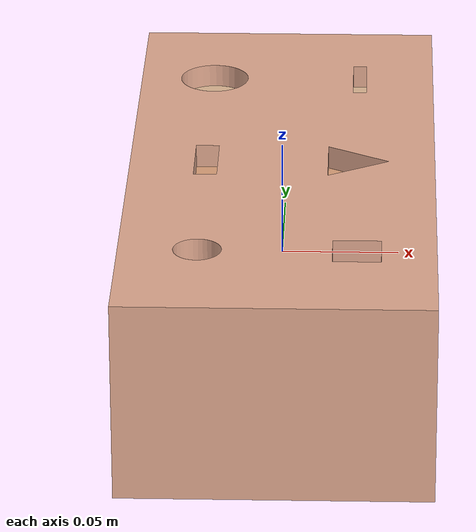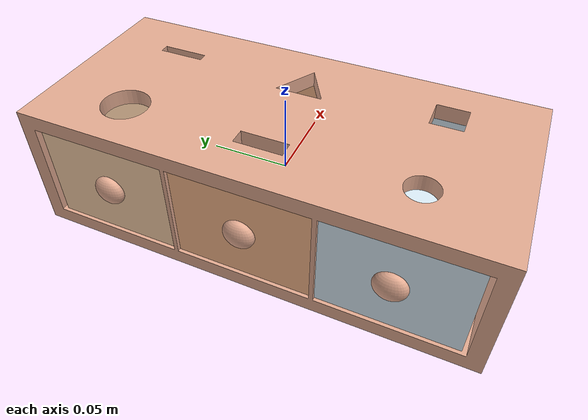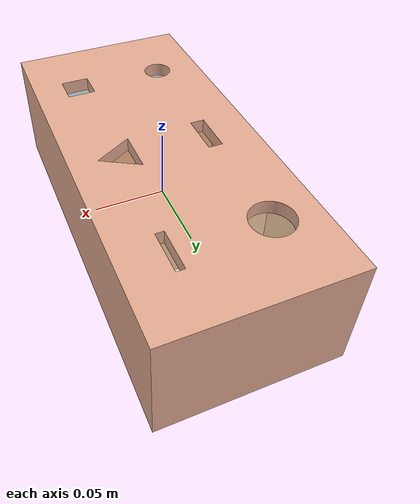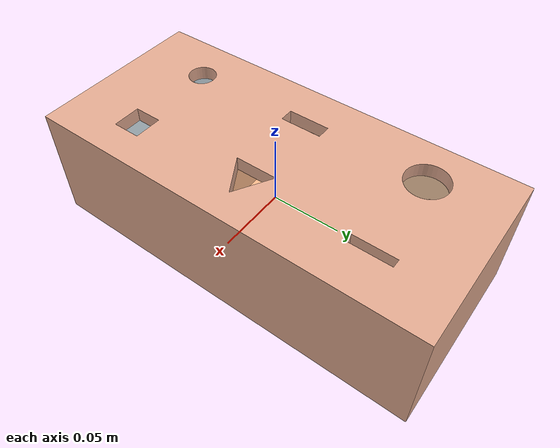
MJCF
<mujoco model="montessori_box">
    <compiler angle="radian" meshdir="." autolimits="true" />
    <asset>
        <mesh name="MontessoriBox" file="stl/MontessoriBox.stl" />
        <mesh name="MontessoriDrawer" file="stl/MontessoriDrawer.stl" />
        <mesh name="MontessoriDrawerHandle" file="stl/MontessoriDrawerHandle.stl" />
    </asset>
    <default>
        <default class="montessori_box_visual">
            <geom contype="0" conaffinity="0" rgba="0.89 0.67 0.57 1.0"/>
        </default>
        <default class="montessori_box_collision">
            <geom rgba="0.9 0.9 0.9 1.0" group="3"/>
        </default>
    </default>
    <worldbody>
        <body name="montessori_box" pos="0 0 0" quat="1 0 0 0">
            <inertial mass="1.0220392942428589" pos="0.026771999895572662 0.00018124992493540049 -0.00393274100497365" quat="0.7081846594810486 -0.003752764780074358 -0.0047669862397015095 0.7060012221336365" diaginertia="0.001928424695506692 0.006246736738830805 0.006575485225766897"/>
			<geom name="MontessoriBox" type="mesh" mesh="MontessoriBox" class="montessori_box_visual"/>
            <geom name="UCX_MontessoriBox_001" type="box" pos="-0.0075 0 0.036" size="0.008 0.021 0.004" class="montessori_box_collision"/>
            <geom name="UCX_MontessoriBox_002" type="box" pos="-0.04625 0 0.036" size="0.00875 0.141 0.004" class="montessori_box_collision"/>
            <geom name="UCX_MontessoriBox_003" type="box" pos="0 0.133 0" size="0.049 0.004 0.032" class="montessori_box_collision"/>
            <geom name="UCX_MontessoriBox_004" type="box" pos="0 -0.133 0" size="0.049 0.004 0.032" class="montessori_box_collision"/>
            <geom name="UCX_MontessoriBox_005" type="box" pos="0.045 0 0" size="0.001 0.129 0.032" class="montessori_box_collision"/>
            <geom name="UCX_MontessoriBox_006" type="box" pos="-0.0025 0.0435 0" size="0.0465 0.0015 0.032" class="montessori_box_collision"/>
            <geom name="UCX_MontessoriBox_007" type="box" pos="-0.0025 -0.0435 0" size="0.0465 0.0015 0.032" class="montessori_box_collision"/>
            <geom name="UCX_MontessoriBox_008" type="box" pos="0 0 -0.036" size="0.055 0.141 0.004" class="montessori_box_collision"/>
            <geom name="UCX_MontessoriBox_009" type="box" pos="0.04575 0 0.036" size="0.00925 0.141 0.004" class="montessori_box_collision"/>
            <geom name="UCX_MontessoriBox_010" type="box" pos="-0.0005 -0.122 0.036" size="0.037 0.019 0.004" class="montessori_box_collision"/>
            <geom name="UCX_MontessoriBox_011" type="box" pos="-0.0005 -0.046 0.036" size="0.037 0.025 0.004" class="montessori_box_collision"/>
            <geom name="UCX_MontessoriBox_012" type="box" pos="-0.0175 0.046 0.036" size="0.02 0.025 0.004" class="montessori_box_collision"/>
            <geom name="UCX_MontessoriBox_013" type="box" pos="-0.0175 0.126 0.036" size="0.02 0.015 0.004" class="montessori_box_collision"/>
            <geom name="UCX_MontessoriBox_014" type="box" pos="0.023937 0.019593 0.036" quat="0.9659258 0 0 -0.258819" size="0.021 0.0105 0.004" class="montessori_box_collision"/>
            <geom name="UCX_MontessoriBox_015" type="box" pos="-0.0005 -0.087 0.036" size="0.005 0.016 0.004" class="montessori_box_collision"/>
            <geom name="UCX_MontessoriBox_016" type="box" pos="0.032 0.081 0.036" size="0.0045 0.06 0.004" class="montessori_box_collision"/>
            <geom name="UCX_MontessoriBox_017" type="box" pos="0.025 0.044 0.036" size="0.0025 0.023 0.004" class="montessori_box_collision"/>
            <geom name="UCX_MontessoriBox_018" type="box" pos="0.025 0.128 0.036" size="0.0025 0.013 0.004" class="montessori_box_collision"/>
            <geom name="UCX_MontessoriBox_019" type="box" pos="0.0025 0.071 0.036" quat="0.9238795 0 0 0.3826834" size="0.0082845 0.0082845 0.004" class="montessori_box_collision"/>
            <geom name="UCX_MontessoriBox_020" type="box" pos="0.0125 0.081 0.036" size="0.01 0.06 0.004" class="montessori_box_collision"/>
            <geom name="UCX_MontessoriBox_021" type="box" pos="-0.0375 0.071 0.036" quat="0.9238795 0 0 0.3826834" size="0.0082845 0.0082845 0.004" class="montessori_box_collision"/>
            <geom name="UCX_MontessoriBox_022" type="box" pos="-0.0375 0.111 0.036" quat="0.9238795 0 0 0.3826834" size="0.0082845 0.0082845 0.004" class="montessori_box_collision"/>
            <geom name="UCX_MontessoriBox_023" type="box" pos="0.0025 0.111 0.036" quat="0.9238795 0 0 0.3826834" size="0.0082845 0.0082845 0.004" class="montessori_box_collision"/>
            <geom name="UCX_MontessoriBox_024" type="box" pos="0.023937 -0.019593 0.036" quat="0.9659258 0 0 0.258819" size="0.021 0.0105 0.004" class="montessori_box_collision"/>
            <geom name="UCX_MontessoriBox_025" type="box" pos="-0.0375 -0.071 0.036" quat="0.9238795 0 0 0.3826834" size="0.0066275 0.0066275 0.004" class="montessori_box_collision"/>
            <geom name="UCX_MontessoriBox_026" type="box" pos="-0.0055 -0.071 0.036" quat="0.9238795 0 0 0.3826834" size="0.0066275 0.0066275 0.004" class="montessori_box_collision"/>
            <geom name="UCX_MontessoriBox_027" type="box" pos="-0.0055 -0.103 0.036" quat="0.9238795 0 0 0.3826834" size="0.0066275 0.0066275 0.004" class="montessori_box_collision"/>
            <geom name="UCX_MontessoriBox_028" type="box" pos="-0.0375 -0.103 0.036" quat="0.9238795 0 0 0.3826834" size="0.0066275 0.0066275 0.004" class="montessori_box_collision"/>

            <body name="montessori_hole_1" pos="0.025 0.091 0.04" />
            <body name="montessori_hole_2" pos="0.0185 0 0.04" />
            <body name="montessori_hole_3" pos="0.0205 -0.087 0.04" />
            <body name="montessori_hole_4" pos="-0.0175 0.091 0.04" />
            <body name="montessori_hole_5" pos="-0.0265 0 0.04" />
            <body name="montessori_hole_6" pos="-0.0215 -0.087 0.04" />

            <body name="montessori_drawer_1" pos="-0.003 0.087 0">
                <inertial mass="0.13218805193901062" pos="0.02574862912297249 5.7039905243527755e-08 -0.002581819426268339" quat="0.999872624874115 -8.210307989031662e-09 0.01595855876803398 -1.6337391883780583e-08" diaginertia="0.00016433888231404126 0.00020200452127028257 0.000267193594481796"/>
				<geom name="MontessoriDrawer1" type="mesh" mesh="MontessoriDrawer" rgba="1.0 0.83 0.67 1.0" class="montessori_box_visual"/>
                <geom name="UCX_MontessoriDrawer1_001" type="box" pos="0 0 -0.03" size="0.046 0.041 0.001" class="montessori_box_collision"/>
                <geom name="UCX_MontessoriDrawer1_002" type="box" pos="-0.042 0 0.001" size="0.004 0.041 0.03" class="montessori_box_collision"/>
                <geom name="UCX_MontessoriDrawer1_003" type="box" pos="0.004 0.0385 0.001" size="0.042 0.0025 0.03" class="montessori_box_collision"/>
                <geom name="UCX_MontessoriDrawer1_004" type="box" pos="0.004 -0.0385 0.001" size="0.042 0.0025 0.03" class="montessori_box_collision"/>
                <geom name="UCX_MontessoriDrawer1_005" type="box" pos="0.0435 0 0.001" size="0.0025 0.036 0.03" class="montessori_box_collision"/>
                <joint name="montessori_drawer_1_joint" type="slide" axis="-1 0 0" range="0 0.1" damping="1"/>

                <body name="montessori_drawer_1_handle" pos="-0.061 0 0.001" >
                    <inertial mass="0.005739745683968067" pos="0.003915580455213785 7.503021315358183e-09 -7.799903084526605e-11" quat="0.70710688829422 -0.7071066498756409 -4.6461747160719824e-07 4.873438115282624e-07" diaginertia="2.267717889026244e-07 3.54303949734458e-07 3.5472436366035254e-07"/>
					<geom name="MontessoriDrawer1Handle" type="mesh" mesh="MontessoriDrawerHandle" class="montessori_box_visual"/>
                    <geom name="UCX_MontessoriDrawer1Handle_001" type="cylinder" pos="0.0075 0 0" quat="0.707 0 0.707 0" size="0.008 0.0075" class="montessori_box_collision"/>
                    <geom name="UCX_MontessoriDrawer1Handle_002" type="ellipsoid" size="0.005 0.011 0.011" class="montessori_box_collision"/>
                </body>
            </body>

           <body name="montessori_drawer_2" pos="-0.003 0 0">
                <inertial mass="0.13218805193901062" pos="0.02574862912297249 5.7039905243527755e-08 -0.002581819426268339" quat="0.999872624874115 -8.210307989031662e-09 0.01595855876803398 -1.6337391883780583e-08" diaginertia="0.00016433888231404126 0.00020200452127028257 0.000267193594481796"/>
				<geom name="MontessoriDrawer2" type="mesh" mesh="MontessoriDrawer" rgba="0.99 0.73 0.55 1.0" class="montessori_box_visual"/>
                <geom name="UCX_MontessoriDrawer2_001" type="box" pos="0 0 -0.03" size="0.046 0.041 0.001" class="montessori_box_collision"/>
                <geom name="UCX_MontessoriDrawer2_002" type="box" pos="-0.042 0 0.001" size="0.004 0.041 0.03" class="montessori_box_collision"/>
                <geom name="UCX_MontessoriDrawer2_003" type="box" pos="0.004 0.0385 0.001" size="0.042 0.0025 0.03" class="montessori_box_collision"/>
                <geom name="UCX_MontessoriDrawer2_004" type="box" pos="0.004 -0.0385 0.001" size="0.042 0.0025 0.03" class="montessori_box_collision"/>
                <geom name="UCX_MontessoriDrawer2_005" type="box" pos="0.0435 0 0.001" size="0.0025 0.036 0.03" class="montessori_box_collision"/>
                <joint name="montessori_drawer_2_joint" type="slide" axis="-1 0 0" range="0 0.1" damping="1"/>

                <body name="montessori_drawer_2_handle" pos="-0.061 0 0.001" >
                    <inertial mass="0.005739745683968067" pos="0.003915580455213785 7.503021315358183e-09 -7.799903084526605e-11" quat="0.70710688829422 -0.7071066498756409 -4.6461747160719824e-07 4.873438115282624e-07" diaginertia="2.267717889026244e-07 3.54303949734458e-07 3.5472436366035254e-07"/>
					<geom name="MontessoriDrawer2Handle" type="mesh" mesh="MontessoriDrawerHandle" class="montessori_box_visual"/>
                    <geom name="UCX_MontessoriDrawer2Handle_001" type="cylinder" pos="0.0075 0 0" quat="0.707 0 0.707 0" size="0.008 0.0075" class="montessori_box_collision"/>
                    <geom name="UCX_MontessoriDrawer2Handle_002" type="ellipsoid" size="0.005 0.011 0.011" class="montessori_box_collision"/>
                </body>
            </body>

            <body name="montessori_drawer_3" pos="-0.003 -0.087 0">
                <inertial mass="0.13218805193901062" pos="0.02574862912297249 5.7039905243527755e-08 -0.002581819426268339" quat="0.999872624874115 -8.210307989031662e-09 0.01595855876803398 -1.6337391883780583e-08" diaginertia="0.00016433888231404126 0.00020200452127028257 0.000267193594481796"/>
				<geom name="MontessoriDrawer3" type="mesh" mesh="MontessoriDrawer" rgba="0.87 0.94 0.98 1.0" class="montessori_box_visual"/>
                <geom name="UCX_MontessoriDrawer3_001" type="box" pos="0 0 -0.03" size="0.046 0.041 0.001" class="montessori_box_collision"/>
                <geom name="UCX_MontessoriDrawer3_002" type="box" pos="-0.042 0 0.001" size="0.004 0.041 0.03" class="montessori_box_collision"/>
                <geom name="UCX_MontessoriDrawer3_003" type="box" pos="0.004 0.0385 0.001" size="0.042 0.0025 0.03" class="montessori_box_collision"/>
                <geom name="UCX_MontessoriDrawer3_004" type="box" pos="0.004 -0.0385 0.001" size="0.042 0.0025 0.03" class="montessori_box_collision"/>
                <geom name="UCX_MontessoriDrawer3_005" type="box" pos="0.0435 0 0.001" size="0.0025 0.036 0.03" class="montessori_box_collision"/>
                <joint name="montessori_drawer_3_joint" type="slide" axis="-1 0 0" range="0 0.1" damping="1"/>

                <body name="montessori_drawer_3_handle" pos="-0.061 0 0.001" >
                    <inertial mass="0.005739745683968067" pos="0.003915580455213785 7.503021315358183e-09 -7.799903084526605e-11" quat="0.70710688829422 -0.7071066498756409 -4.6461747160719824e-07 4.873438115282624e-07" diaginertia="2.267717889026244e-07 3.54303949734458e-07 3.5472436366035254e-07"/>
					<geom name="MontessoriDrawer3Handle" type="mesh" mesh="MontessoriDrawerHandle" class="montessori_box_visual"/>
                    <geom name="UCX_MontessoriDrawer3Handle_001" type="cylinder" pos="0.0075 0 0" quat="0.707 0 0.707 0" size="0.008 0.0075" class="montessori_box_collision"/>
                    <geom name="UCX_MontessoriDrawer3Handle_002" type="ellipsoid" size="0.005 0.011 0.011" class="montessori_box_collision"/>
                </body>
            </body>
        </body>
    </worldbody>
</mujoco>
